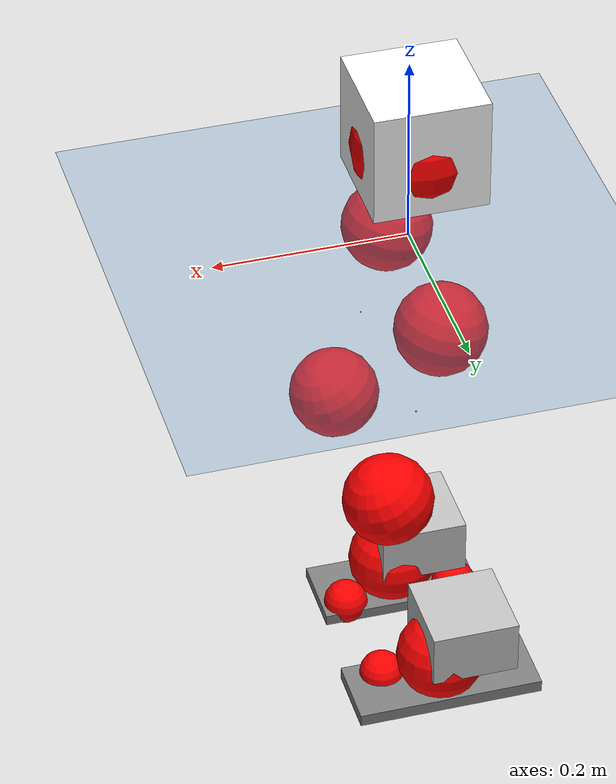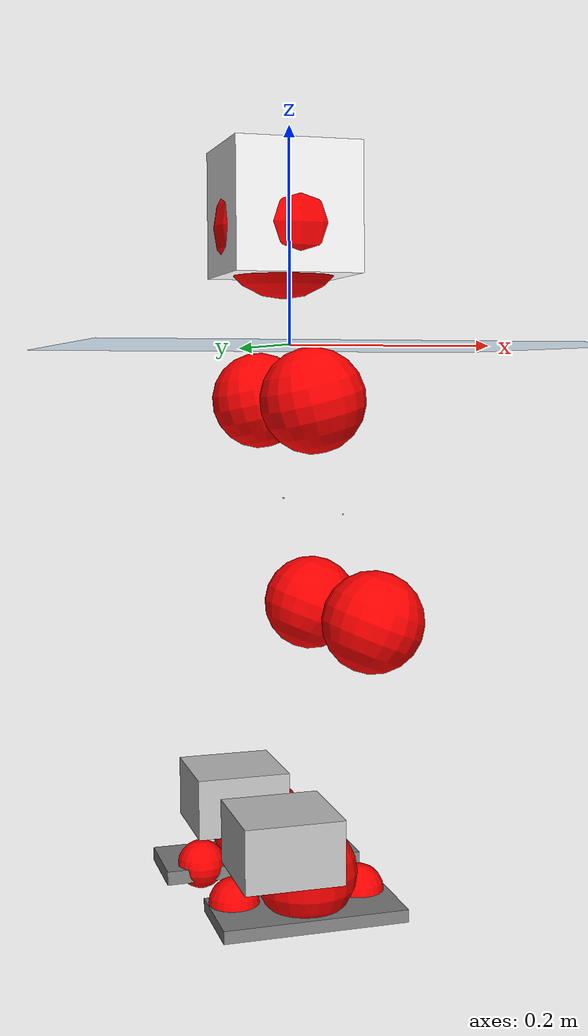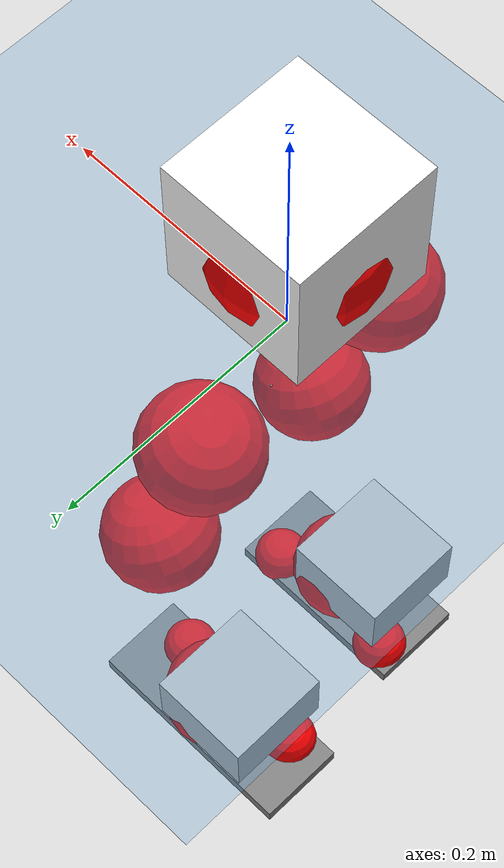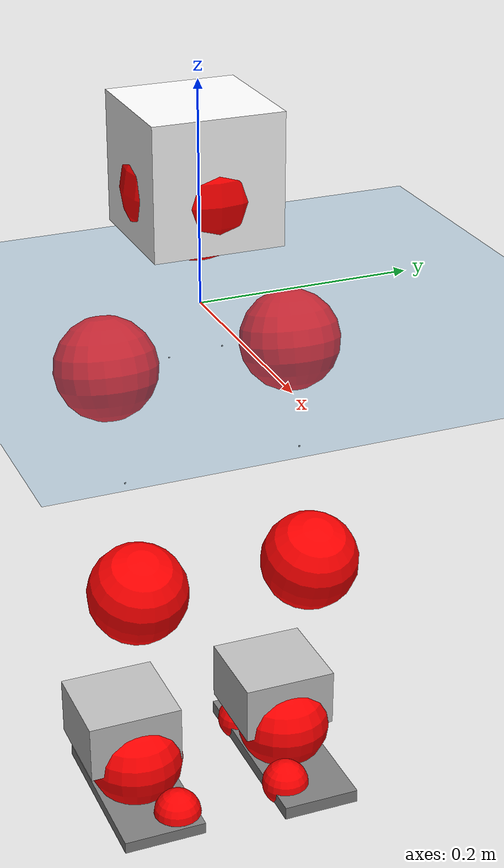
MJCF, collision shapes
<mujoco model="pi_12dof_release_v1">
  <compiler angle="radian" assetdir="assets" balanceinertia="true" inertiafromgeom="false"/>

  <option timestep="0.005" density="1.2" viscosity="2e-05"/>

  <size nkey="1"/>

  <visual>
    <quality shadowsize="8192"/>
    <map shadowclip="0.5"/>
  </visual>

  <default>
    <default class="/">
      <joint armature="0.01" damping="0.01" frictionloss="0.01"/>
      <geom contype="0" conaffinity="0" group="1" solref="-1000 -80"/>
      <site size="0.01 0.005 0.005" group="5"/>
      <general forcelimited="true" biastype="affine" gainprm="20" biasprm="0 -20 -0.5"/>
      <default class="foot">
        <geom size="0.0845 0.036 0.005" type="box" condim="6" group="4" priority="1" friction="0.9 0.2 0.2" solimp="0.015 1 0.005"/>
      </default>
      <default class="reward_collision_sphere">
        <geom group="5" rgba="1 0 0 1"/>
      </default>
    </default>
  </default>

  <asset>
    <texture type="skybox" colorspace="auto" name="//unnamed_texture_0" builtin="gradient" rgb1="0.95 0.95 0.95" rgb2="0.95 0.95 0.95" width="100" height="600"/>
    <texture type="2d" colorspace="auto" name="texplane" builtin="checker" rgb1="0.345 0.575 0.748" rgb2="0.345 0.575 0.748" markrgb="1 1 1" width="512" height="512"/>
    <material name="MatPlane" class="/" texture="texplane" texuniform="true" texrepeat="2 2" specular="0.9"/>
    <mesh name="baselink_1" class="/" file="baselink_1.STL"/>
    <mesh name="r_hip_pitch_link" class="/" file="r_hip_pitch_link.STL"/>
    <mesh name="r_hip_roll_link" class="/" file="r_hip_roll_link.STL"/>
    <mesh name="r_thigh_link" class="/" file="r_thigh_link.STL"/>
    <mesh name="r_calf_link" class="/" file="r_calf_link.STL"/>
    <mesh name="r_ankle_pitch_link" class="/" file="r_ankle_pitch_link.STL"/>
    <mesh name="r_ankle_roll_link" class="/" file="r_ankle_roll_link.STL"/>
    <mesh name="l_hip_pitch_link" class="/" file="l_hip_pitch_link.STL"/>
    <mesh name="l_hip_roll_link" class="/" file="l_hip_roll_link.STL"/>
    <mesh name="l_thigh_link" class="/" file="l_thigh_link.STL"/>
    <mesh name="l_calf_link" class="/" file="l_calf_link.STL"/>
    <mesh name="l_ankle_pitch_link" class="/" file="l_ankle_pitch_link.STL"/>
    <mesh name="l_ankle_roll_link" class="/" file="l_ankle_roll_link.STL"/>
  </asset>

  <worldbody>
    <geom name="floor" class="/" size="100 100 0.125" type="plane" group="0" material="MatPlane"/>
    <light name="toplight_shadow" class="/" pos="0 0 5" dir="0.0990148 0.0990148 -0.990148" type="directional" ambient="0.04 0.04 0.04" diffuse="0.55 0.55 0.55" specular="0.12 0.12 0.12"/>
    <light name="toplight_fill" class="/" pos="0 0 5" dir="0.0990148 0.0990148 -0.990148" type="directional" castshadow="false" ambient="0.04 0.04 0.04" diffuse="0.3 0.3 0.3" specular="0.08 0.08 0.08"/>
    <body name="trunk" pos="-0.00617065 -0.00157962 -0.000522934" quat="0.999997 -0.00126306 -0.00112171 -0.00171202">
      <inertial pos="0.00765872 0.000464625 0.0595448" quat="0.697331 -0.00174821 0.0127273 0.716634" mass="3.8145" diaginertia="0.00546566 0.0147281 0.0358765"/>
      <joint name="//unnamed_joint_0" type="free"/>
      <geom name="//unnamed_geom_1" class="/" type="mesh" density="0" rgba="1 1 1 1" mesh="baselink_1"/>
      <geom name="//unnamed_geom_2" class="/" size="0.0586279 0.0586279 0.0586279" pos="0 0 0.122303" type="box" rgba="1 1 1 1"/>
      <geom name="//unnamed_geom_3" class="reward_collision_sphere" size="0.0644907" pos="0 0 0.107015"/>
      <site name="imu" class="/" pos="-0.00889249 -0.000863156 -0.0219931" size="0.0117256"/>
      <camera name="track" class="/" pos="0 -2.20295 0" quat="0.707107 0.707107 0 0" mode="trackcom"/>
      <camera name="ego_camera" class="/" pos="0.0665558 0 0.275182" quat="-0.5 -0.5 0.5 0.5"/>
      <body name="r_hip_pitch_link" pos="0.00169095 -0.0270353 -0.0493535" quat="0.992186 -0.000101343 -0.124766 0.0002577">
        <inertial pos="0.00345818 -0.0589452 -0.00164952" quat="-0.0278166 0.709112 -0.0297279 0.703919" mass="0.610235" diaginertia="5.67063e-05 0.000163922 0.000692722"/>
        <joint name="r_hip_pitch_joint" class="/" pos="0 0 0" axis="0.00152448 -0.999998 0.00137361" range="-1.75444 1.29287" armature="0.0106436" damping="0" frictionloss="0.0104413"/>
        <geom name="//unnamed_geom_4" class="/" type="mesh" density="0" rgba="0.75294 0.75294 0.75294 1" mesh="r_hip_pitch_link"/>
        <geom name="//unnamed_geom_5" class="/" size="0.000586279 0.000586279 0.000586279" type="box" rgba="0.75294 0.75294 0.75294 1"/>
        <body name="r_hip_roll_link" pos="0.000473011 -0.0590972 -0.000481185" quat="0.999998 0.000482916 0.00152405 -0.000798673">
          <inertial pos="-0.00334523 0.00142975 -0.0884018" quat="0.70596 -0.0791991 -0.0827757 0.698925" mass="0.631605" diaginertia="0.000189504 0.000472185 0.00101016"/>
          <joint name="r_hip_roll_joint" class="/" pos="0 0 0" axis="-0.999939 -0.00147839 0.0109605" stiffness="0.00975365" range="-0.160908 0.536174" armature="0.0110298" damping="0.0306043" frictionloss="0.00978652"/>
          <geom name="//unnamed_geom_6" class="/" type="mesh" density="0" rgba="0.75294 0.75294 0.75294 1" mesh="r_hip_roll_link"/>
          <geom name="//unnamed_geom_7" class="/" size="0.000586279 0.000586279 0.000586279" type="box" rgba="0.75294 0.75294 0.75294 1"/>
          <geom name="//unnamed_geom_8" class="reward_collision_sphere" size="0.0469023"/>
          <body name="r_thigh_link" pos="0.00307338 0.00483537 -0.104864" quat="1 0.000298178 -0.00035474 -4.81271e-05">
            <inertial pos="0.00318576 0.00196959 -0.0741193" quat="0.735263 0.677758 -0.00461639 0.00323427" mass="0.180045" diaginertia="6.36593e-05 0.000139004 0.000455345"/>
            <joint name="r_thigh_joint" class="/" pos="0 0 0" axis="-0.0032115 -0.00274687 -0.999991" stiffness="0.0017971" range="-0.245281 0.57982" armature="0.011996" damping="0.0151403" frictionloss="0.0153879"/>
            <geom name="//unnamed_geom_9" class="/" type="mesh" density="0" rgba="0.75294 0.75294 0.75294 1" mesh="r_thigh_link"/>
            <geom name="//unnamed_geom_10" class="/" size="0.000586279 0.000586279 0.000586279" type="box" rgba="0.75294 0.75294 0.75294 1"/>
            <body name="r_calf_link" pos="0.00321673 -0.000663713 -0.102483" quat="0.94774 0.00122791 0.319041 -0.00034902">
              <inertial pos="-0.000331107 0.00276877 -0.10599" quat="0.999796 -0.0184049 0.0068756 0.00459619" mass="1.32972" diaginertia="0.00200221 0.00571257 0.00148525"/>
              <joint name="r_calf_joint" class="/" pos="0 0 0" axis="-0.0168257 -0.999838 -0.00642901" stiffness="0.0184236" range="-1.76398 0.607085" armature="0.0103464" damping="0.0210104" frictionloss="0.0103086"/>
              <geom name="//unnamed_geom_11" class="/" type="mesh" density="0" rgba="0.75294 0.75294 0.75294 1" mesh="r_calf_link"/>
              <geom name="//unnamed_geom_12" class="/" size="0.000586279 0.000586279 0.000586279" type="box" rgba="0.75294 0.75294 0.75294 1"/>
              <geom name="//unnamed_geom_13" class="reward_collision_sphere" size="0.0469023"/>
              <body name="r_ankle_pitch_link" pos="-0.000853348 0.00603247 -0.213555" quat="0.980095 -0.000375185 -0.198527 -0.000240264">
                <inertial pos="0.00387427 0.00630234 -0.00221323" quat="-0.000489006 0.706572 -0.00773937 0.707599" mass="0.278886" diaginertia="0.000164458 0.000349712 0.000954134"/>
                <joint name="r_ankle_pitch_joint" class="/" pos="0 0 0" axis="-0.0233697 -0.999689 0.00874905" range="-1.284 0.515474" armature="0.0125454" damping="0.0138727" frictionloss="0.0114949"/>
                <geom name="//unnamed_geom_14" class="/" type="mesh" density="0" rgba="0.75294 0.75294 0.75294 1" mesh="r_ankle_pitch_link"/>
                <geom name="//unnamed_geom_15" class="/" size="0.0457298 0.0469023 0.029314" type="box" rgba="0.75294 0.75294 0.75294 1"/>
                <body name="r_ankle_roll_link" pos="0.0682694 0.00601536 -0.00119856" quat="1 -0.000253418 -0.000140903 5.98671e-05">
                  <inertial pos="-0.0201588 0.00186205 -0.0224016" quat="0.559204 0.422873 0.452204 0.551345" mass="0.82871" diaginertia="0.000626707 0.00168327 0.00243366"/>
                  <joint name="r_ankle_roll_joint" class="/" pos="0 0 0" axis="-0.999618 -0.0216556 0.0171635" range="-0.0574663 0.184967" armature="0.00908982" damping="0" frictionloss="0.0120452"/>
                  <geom name="//unnamed_geom_16" class="/" type="mesh" density="0" rgba="0.75294 0.75294 0.75294 1" mesh="r_ankle_roll_link"/>
                  <geom name="//unnamed_geom_17" class="/" type="mesh" rgba="0.75294 0.75294 0.75294 1" mesh="r_ankle_roll_link"/>
                  <geom name="right_foot" class="foot" size="0.0852964 0.0411235 0.00585538" pos="-0.045258 0 -0.0672667"/>
                  <geom name="//unnamed_geom_19" class="reward_collision_sphere" size="0.0469023" pos="-0.0443706 0 -0.0305758"/>
                  <geom name="//unnamed_geom_20" class="reward_collision_sphere" size="0.0234512" pos="0.0133112 0.0220295 -0.0611515"/>
                  <geom name="//unnamed_geom_21" class="reward_collision_sphere" size="0.0234512" pos="-0.106489 0.0220295 -0.0611515"/>
                  <site name="right_foot" class="foot" pos="-0.045258 0 -0.0672667" size="0.0117256"/>
                </body>
              </body>
            </body>
          </body>
        </body>
      </body>
      <body name="l_hip_pitch_link" pos="-0.00176567 0.0248541 -0.0480586" quat="0.992186 0.000131565 -0.124763 0.000293604">
        <inertial pos="0.00212549 0.054566 0.0018121" quat="-0.0469416 0.720271 0.00599151 0.692077" mass="0.606202" diaginertia="7.44631e-05 0.000174668 0.000817742"/>
        <joint name="l_hip_pitch_joint" class="/" pos="0 0 0" axis="-0.025615 0.999554 0.0153714" range="-1.21312 1.7371" armature="0.0120824" damping="0.0132501" frictionloss="0.0112939"/>
        <geom name="//unnamed_geom_22" class="/" type="mesh" density="0" rgba="0.75294 0.75294 0.75294 1" mesh="l_hip_pitch_link"/>
        <geom name="//unnamed_geom_23" class="/" size="0.000586279 0.000586279 0.000586279" type="box" rgba="0.75294 0.75294 0.75294 1"/>
        <body name="l_hip_roll_link" pos="-0.000120152 0.0662643 -0.00409449" quat="0.999999 -0.000522444 -0.000829194 -0.000519567">
          <inertial pos="-0.00215263 1.57373e-05 -0.0905807" quat="0.704777 -0.0743803 -0.0783488 0.701155" mass="0.600072" diaginertia="0.000190676 0.000476243 0.00108464"/>
          <joint name="l_hip_roll_joint" class="/" pos="0 0 0" axis="-0.999954 -0.00415922 0.00868618" stiffness="0.0330185" range="-0.547084 0.060372" armature="0.0110846" damping="0.00511999" frictionloss="0.0107723"/>
          <geom name="//unnamed_geom_24" class="/" type="mesh" density="0" rgba="0.75294 0.75294 0.75294 1" mesh="l_hip_roll_link"/>
          <geom name="//unnamed_geom_25" class="/" size="0.000586279 0.000586279 0.000586279" type="box" rgba="0.75294 0.75294 0.75294 1"/>
          <geom name="//unnamed_geom_26" class="reward_collision_sphere" size="0.0469023"/>
          <body name="l_thigh_link" pos="-0.00087606 0.000463462 -0.100828" quat="0.999999 0.00114633 0.000208721 -1.281e-05">
            <inertial pos="-0.00137013 -0.00708389 -0.0721061" quat="0.675391 0.73746 -1.89872e-06 1.64172e-06" mass="0.186141" diaginertia="7.04248e-05 0.000159381 0.000530656"/>
            <joint name="l_thigh_joint" class="/" pos="0 0 0" axis="0.0026344 0.00802065 -0.999964" range="-0.582972 0.262784" armature="0.0117917" damping="0.0232742" frictionloss="0.0117484"/>
            <geom name="//unnamed_geom_27" class="/" type="mesh" density="0" rgba="0.75294 0.75294 0.75294 1" mesh="l_thigh_link"/>
            <geom name="//unnamed_geom_28" class="/" size="0.000586279 0.000586279 0.000586279" type="box" rgba="0.75294 0.75294 0.75294 1"/>
            <body name="l_calf_link" pos="0.000563012 -0.000217549 -0.110262" quat="0.94736 -0.00245746 0.320159 1.55648e-05">
              <inertial pos="-0.00528383 0.001849 -0.101104" quat="0.999991 0.00153168 0.00192521 -0.00349735" mass="1.30347" diaginertia="0.00191898 0.00557225 0.00141068"/>
              <joint name="l_calf_joint" class="/" pos="0 0 0" axis="-0.000784677 0.999999 -0.000716213" range="-0.69636 1.66313" armature="0.0128336" damping="0.0114034" frictionloss="0.0137982"/>
              <geom name="//unnamed_geom_29" class="/" type="mesh" density="0" rgba="0.75294 0.75294 0.75294 1" mesh="l_calf_link"/>
              <geom name="//unnamed_geom_30" class="/" size="0.000586279 0.000586279 0.000586279" type="box" rgba="0.75294 0.75294 0.75294 1"/>
              <geom name="//unnamed_geom_31" class="reward_collision_sphere" size="0.0469023"/>
              <body name="l_ankle_pitch_link" pos="-0.00121346 -0.000357361 -0.208317" quat="0.98006 -6.27075e-06 -0.198702 0.000325138">
                <inertial pos="0.00177158 -0.0017382 4.65103e-05" quat="-0.00374909 0.707023 0.00283982 0.707175" mass="0.297703" diaginertia="0.000164848 0.000355441 0.00099447"/>
                <joint name="l_ankle_pitch_joint" class="/" pos="0 0 0" axis="0.000334067 0.999995 -0.00306821" stiffness="0.000366874" range="-0.509682 1.35031" armature="0.0116919" damping="0" frictionloss="0.0122032"/>
                <geom name="//unnamed_geom_32" class="/" type="mesh" density="0" rgba="0.75294 0.75294 0.75294 1" mesh="l_ankle_pitch_link"/>
                <geom name="//unnamed_geom_33" class="/" size="0.0457298 0.0469023 0.029314" type="box" rgba="0.75294 0.75294 0.75294 1"/>
                <body name="l_ankle_roll_link" pos="0.0684648 0.00173154 -0.000448471" quat="0.999999 0.000485783 0.000691406 -0.000688217">
                  <inertial pos="-0.0192842 0.00126427 -0.0227208" quat="0.560459 0.430559 0.43414 0.558594" mass="0.826944" diaginertia="0.000639448 0.00169527 0.00229384"/>
                  <joint name="l_ankle_roll_joint" class="/" pos="0 0 0" axis="-0.99965 0.0260504 0.00457569" stiffness="0.0185511" range="-0.138458 0.167461" armature="0.0106509" damping="0" frictionloss="0.0110365"/>
                  <geom name="//unnamed_geom_34" class="/" type="mesh" density="0" rgba="0.75294 0.75294 0.75294 1" mesh="l_ankle_roll_link"/>
                  <geom name="//unnamed_geom_35" class="/" type="mesh" rgba="0.75294 0.75294 0.75294 1" mesh="l_ankle_roll_link"/>
                  <geom name="left_foot" class="foot" size="0.0983794 0.0385497 0.0066328" pos="-0.045258 0 -0.0672667"/>
                  <geom name="//unnamed_geom_37" class="reward_collision_sphere" size="0.0469023" pos="-0.0443706 0 -0.0305758"/>
                  <geom name="//unnamed_geom_38" class="reward_collision_sphere" size="0.0234512" pos="0.0133112 -0.0220295 -0.0611515"/>
                  <geom name="//unnamed_geom_39" class="reward_collision_sphere" size="0.0234512" pos="-0.106489 -0.0220295 -0.0611515"/>
                  <site name="left_foot" class="foot" pos="-0.045258 0 -0.0672667" size="0.0117256"/>
                </body>
              </body>
            </body>
          </body>
        </body>
      </body>
    </body>
  </worldbody>

  <contact>
    <pair class="/" geom1="floor" geom2="right_foot" name="//unnamed_contact_1"/>
    <pair class="/" geom1="floor" geom2="left_foot" name="//unnamed_contact_0"/>
  </contact>

  <actuator>
    <general name="r_hip_pitch_joint" class="/" joint="r_hip_pitch_joint" forcerange="-24.6611 24.6611" gainprm="24.0238" biasprm="0 -24.0238 -0.6051"/>
    <general name="r_hip_roll_joint" class="/" joint="r_hip_roll_joint" forcerange="-23.9588 23.9588" gainprm="24.0238" biasprm="0 -24.0238 -0.6051"/>
    <general name="r_thigh_joint" class="/" joint="r_thigh_joint" forcerange="-22.5754 22.5754" gainprm="24.0238" biasprm="0 -24.0238 -0.6051"/>
    <general name="r_calf_joint" class="/" joint="r_calf_joint" forcerange="-19.169 19.169" gainprm="24.0238" biasprm="0 -24.0238 -0.6051"/>
    <general name="r_ankle_pitch_joint" class="/" joint="r_ankle_pitch_joint" forcerange="-26.8219 26.8219" gainprm="24.0238" biasprm="0 -24.0238 -0.6051"/>
    <general name="r_ankle_roll_joint" class="/" joint="r_ankle_roll_joint" forcerange="-28.6942 28.6942" gainprm="24.0238" biasprm="0 -24.0238 -0.6051"/>
    <general name="l_hip_pitch_joint" class="/" joint="l_hip_pitch_joint" forcerange="-24.1088 24.1088" gainprm="24.0238" biasprm="0 -24.0238 -0.6051"/>
    <general name="l_hip_roll_joint" class="/" joint="l_hip_roll_joint" forcerange="-24.6812 24.6812" gainprm="24.0238" biasprm="0 -24.0238 -0.6051"/>
    <general name="l_thigh_joint" class="/" joint="l_thigh_joint" forcerange="-22.5644 22.5644" gainprm="24.0238" biasprm="0 -24.0238 -0.6051"/>
    <general name="l_calf_joint" class="/" joint="l_calf_joint" forcerange="-23.9227 23.9227" gainprm="24.0238" biasprm="0 -24.0238 -0.6051"/>
    <general name="l_ankle_pitch_joint" class="/" joint="l_ankle_pitch_joint" forcerange="-24.6548 24.6548" gainprm="24.0238" biasprm="0 -24.0238 -0.6051"/>
    <general name="l_ankle_roll_joint" class="/" joint="l_ankle_roll_joint" forcerange="-25.028 25.028" gainprm="24.0238" biasprm="0 -24.0238 -0.6051"/>
  </actuator>

  <sensor>
    <gyro site="imu" name="imu_angular_velocity"/>
    <velocimeter site="imu" name="imu_linear_velocity"/>
    <framelinvel objtype="site" objname="left_foot" name="left_foot_global_linear_velocity"/>
    <framelinvel objtype="site" objname="right_foot" name="right_foot_global_linear_velocity"/>
  </sensor>

  <keyframe>
    <key name="home" qpos="0 0 0.291 1 0 0 0 0.4 0 0 -0.8 0.4 0 -0.4 0 0 0.8 -0.4 0"/>
  </keyframe>
</mujoco>
